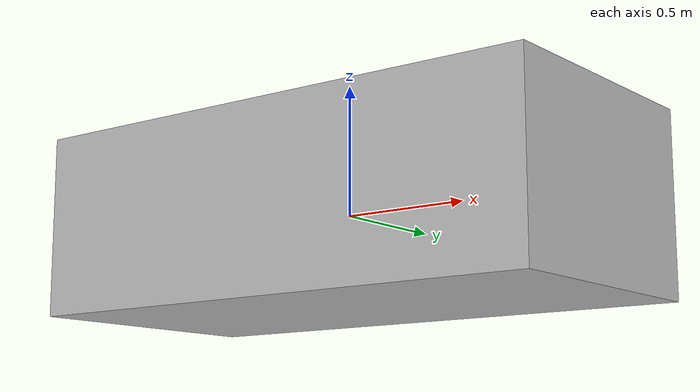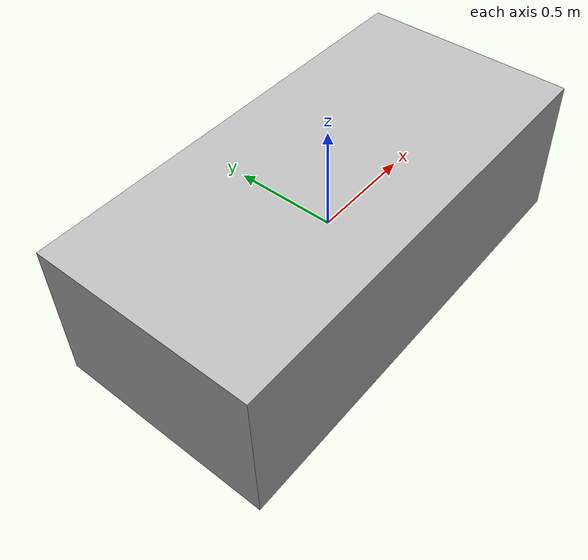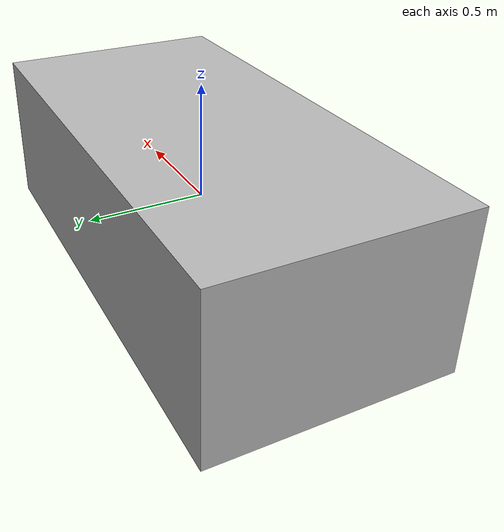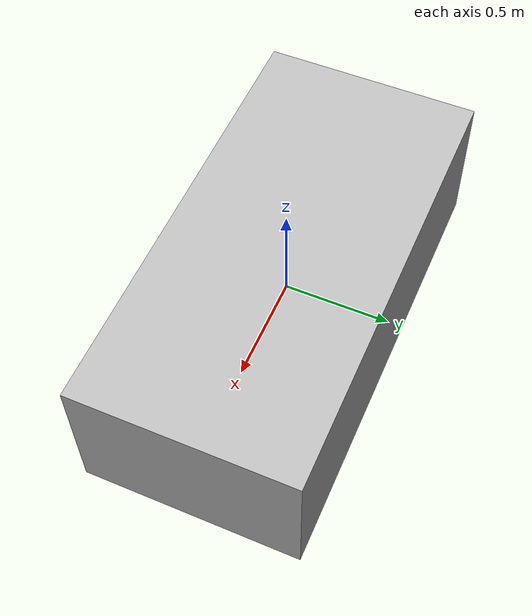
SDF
<?xml version="1.0" ?>
<sdf version='1.6'>

<model name='rover_pic4ser'>
      <pose>0 0 0 0 0 0</pose>

      <link name='chassis'>
        <pose>0 0 0 0 0 0</pose>
        <inertial>
          <mass>1.14395</mass>
          <inertia>
            <ixx>0.126164</ixx>
            <ixy>0</ixy>
            <ixz>0</ixz>
            <iyy>0.416519</iyy>
            <iyz>0</iyz>
            <izz>0.481014</izz>
          </inertia>
        </inertial>
        <visual name='visual'>
          <geometry>
            <box>
              <size>2.12 1.04 0.7</size>
            </box>
          </geometry>
        </visual>
        <collision name='collision'>
          <geometry>
            <box>
              <size>2.12 1.04 0.7</size>
            </box>
          </geometry>
          <surface>
            <friction>
              <ode>
                <mu>0.7</mu>
                <mu2>0.7</mu2>
                <slip1>0</slip1>
                <slip2>0</slip2>
              </ode>
            </friction>
            <contact>
              <ode>
                <soft_cfm>0</soft_cfm>
                <soft_erp>0.2</soft_erp>
                <kp>1e+13</kp>
                <kd>1</kd>
                <max_vel>0.01</max_vel>
                <min_depth>0.01</min_depth>
              </ode>
              <bullet>
                <soft_cfm>0</soft_cfm>
                <soft_erp>0.2</soft_erp>
                <kp>1e+13</kp>
                <kd>1</kd>
		<split_impulse>1</split_impulse>
		<split_impulse_penetration_threshold>-0.01</split_impulse_penetration_threshold>
              </bullet>
            </contact>
          </surface>
        </collision>
      </link>

    <plugin name="chassis" filename="libgazebo_ros_p3d.so">
        <ros>
          <namespace>/rover_pic4ser</namespace>
        </ros>
        <body_name>chassis</body_name>
        <frame_name>world</frame_name>
        <update_rate>50</update_rate>
        <xyz_offset>0 0 0</xyz_offset>
        <rpy_offset>0 0 0</rpy_offset>
        <gaussian_noise>0</gaussian_noise>
      </plugin>

      <plugin name='planar_move' filename='libgazebo_ros_planar_move.so'>
        <ros>
          <namespace>/rover_pic4ser</namespace>
      </ros>
      </plugin>

  </model>
</sdf>
